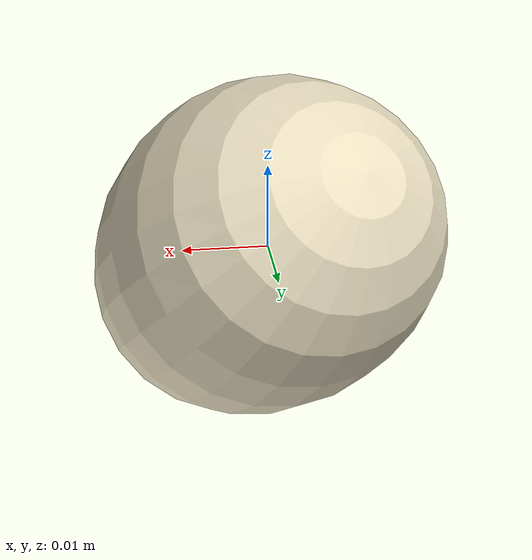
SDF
<?xml version="1.0"?>
<sdf version="1.7">
  <model name="cotton_pick_B_06">
    <static>false</static>
    <allow_auto_disable>false</allow_auto_disable>
    <link name="cotton_pick_B_06_link">
      <gravity>false</gravity>
      <self_collide>false</self_collide>
      <inertial>
        <mass>0.01200</mass>
        <inertia>
          <ixx>0.00000155</ixx>
          <iyy>0.00000155</iyy>
          <izz>0.00000155</izz>
          <ixy>0</ixy>
          <ixz>0</ixz>
          <iyz>0</iyz>
        </inertia>
      </inertial>
      <visual name="cotton_pick_B_06_visual">
        <geometry>
          <mesh>
            <uri>model://cotton_pick_B_06/meshes/cotton_pick_B_06.dae</uri>
          </mesh>
        </geometry>
      </visual>
      <collision name="cotton_pick_B_06_sphere_collision">
        <geometry>
          <sphere>
            <radius>0.01796</radius>
          </sphere>
        </geometry>
        <surface>
          <friction>
            <ode>
              <mu>1.6</mu>
              <mu2>1.6</mu2>
            </ode>
          </friction>
          <contact>
            <ode>
              <kp>8000</kp>
              <kd>80</kd>
            </ode>
          </contact>
        </surface>
      </collision>
    </link>
  </model>
</sdf>
